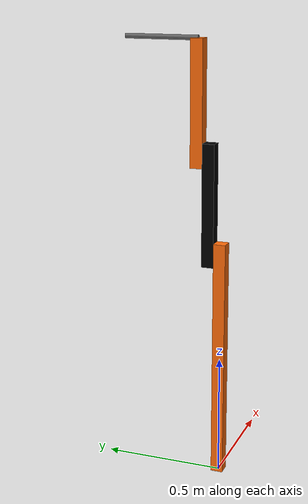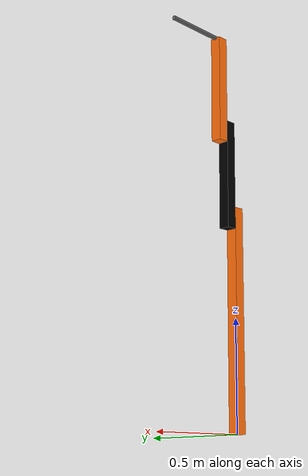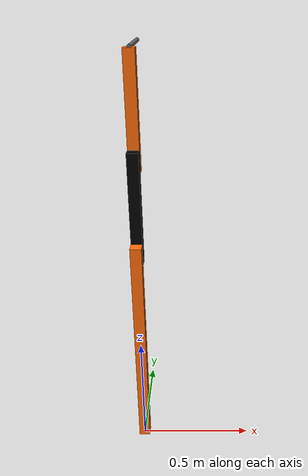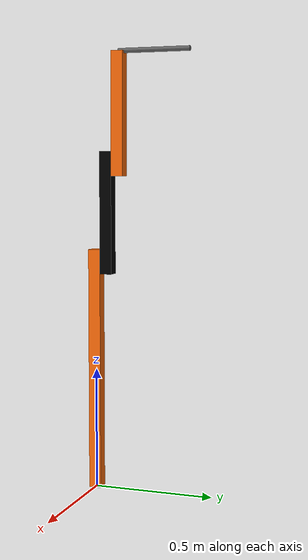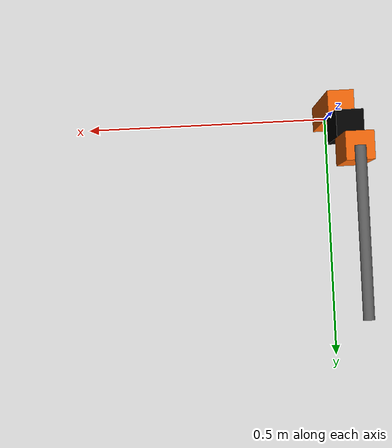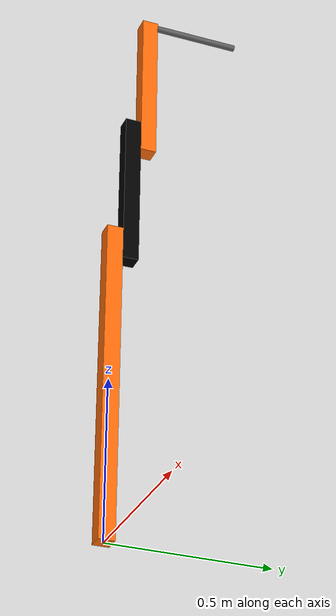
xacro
<?xml version="1.0"?>
<!-- Revolute-Revolute Manipulator -->
<robot name="needle_bot" xmlns:xacro="http://www.ros.org/wiki/xacro">
  <xacro:include filename="$(find needle_simulation)/urdf/common_properties.xacro"/>

  <!-- Constants for robot dimensions -->
  <xacro:property name="PI" value="3.1415926535897931"/>
  <xacro:property name="joint_range" value="2.35619"/>
  <xacro:property name="mass" value="0.25" /> <!-- arbitrary value for mass -->
  <xacro:property name="width" value="0.05" /> <!-- Square dimensions (widthxwidth) of beams -->
  <xacro:property name="height1" value="1" /> <!-- Link 1 -->
  <xacro:property name="height2" value="0.5" /> <!-- Link 2 -->
  <xacro:property name="height3" value="0.5" /> <!-- Link 3 -->
  <xacro:property name="needle_radius" value="0.01" /> <!-- Link 3 -->
  <xacro:property name="needle_length" value="0.3" /> <!-- Link 3 -->
  <xacro:property name="needle_mass" value="0.001" /> <!-- Link 3 -->
  <xacro:property name="axel_offset" value="0.05" /> <!-- Space btw top of beam and the each joint -->

  <!-- ros_control plugin -->
  <gazebo>
    <plugin name="gazebo_ros_control" filename="libgazebo_ros_control.so">
      <robotNamespace>/needle_bot</robotNamespace>
      <robotSimType>gazebo_ros_control/DefaultRobotHWSim</robotSimType>
    </plugin>
  </gazebo>

  <!-- Used for fixing robot to Gazebo 'base_link' -->
  <link name="base_link">
  </link>

  <joint name="base_joint" type="fixed">
    <parent link="base_link"/>
    <child link="link1"/>
    <origin xyz="0.0 0.0 0.0" rpy="0 0 0"/>
  </joint>

  <!-- Base Link -->
  <link name="link1">
    <collision>
      <origin xyz="0 0 ${height1/2}" rpy="0 0 0"/>
      <geometry>
	      <box size="${width} ${width} ${height1}"/>
      </geometry>
    </collision>

    <visual>
      <origin xyz="0 0 ${height1/2}" rpy="0 0 0"/>
      <geometry>
	      <box size="${width} ${width} ${height1}"/>
      </geometry>
      <material name="orange"/>
    </visual>

    <inertial>
      <origin xyz="0 0 ${height1/2}" rpy="0 0 0"/>
      <mass value="${mass*1000}"/>
      <inertia
	    ixx="${mass*1000 / 12.0 * (width*width + height1*height1)}" ixy="0.0" ixz="0.0"
	    iyy="${mass*1000 / 12.0 * (height1*height1 + width*width)}" iyz="0.0"
	    izz="${mass*1000 / 12.0 * (width*width + width*width)}"/>
      </inertial>
  </link>

  <joint name="joint1" type="revolute">
    <parent link="link1"/>
    <child link="link2"/>
    <limit effort="30" velocity="1.57079633" lower="-${joint_range}" upper="${joint_range}" />
    <origin xyz="0 ${width} ${height1 - axel_offset}" rpy="0 0 0"/>
    <axis xyz="0 1 0"/>
    <dynamics damping="0.7"/>
  </joint>

  <!-- Middle Link -->
  <link name="link2">
    <collision>
      <origin xyz="0 0 ${height2/2 - axel_offset}" rpy="0 0 0"/>
      <geometry>
      	<box size="${width} ${width} ${height2}"/>
      </geometry>
    </collision>

    <visual>
      <origin xyz="0 0 ${height2/2 - axel_offset}" rpy="0 0 0"/>
      <geometry>
    	<box size="${width} ${width} ${height2}"/>
      </geometry>
      <material name="black"/>
    </visual>

    <inertial>
      <origin xyz="0 0 ${height2/2 - axel_offset}" rpy="0 0 0"/>
      <mass value="${mass}"/>
      <inertia
	    ixx="${mass / 12.0 * (width*width + height2*height2)}" ixy="0.0" ixz="0.0"
	    iyy="${mass / 12.0 * (height2*height2 + width*width)}" iyz="0.0"
	    izz="${mass / 12.0 * (width*width + width*width)}"/>
      </inertial>
  </link>

  <joint name="joint2" type="revolute">
    <parent link="link2"/>
    <child link="link3"/>
    <limit effort="30" velocity="1.57079633" lower="-${joint_range}" upper="${joint_range}" />
    <origin xyz="0 ${width} ${height2 - axel_offset*2}" rpy="0 0 0"/>
    <axis xyz="0 1 0"/>
    <dynamics damping="0.7"/>
  </joint>

  <!-- Top Link -->
  <link name="link3">
    <collision>
      <origin xyz="0 0 ${height3/2 - axel_offset}" rpy="0 0 0"/>
      <geometry>
	      <box size="${width} ${width} ${height3}"/>
      </geometry>
    </collision>

    <visual>
      <origin xyz="0 0 ${height3/2 - axel_offset}" rpy="0 0 0"/>
      <geometry>
      	<box size="${width} ${width} ${height3}"/>
      </geometry>
      <material name="orange"/>
    </visual>

    <inertial>
      <origin xyz="0 0 ${height3/2 - axel_offset}" rpy="0 0 0"/>
      <mass value="${mass/2}"/>
      <inertia
	      ixx="${mass/2 / 12.0 * (width*width + height3*height3)}" ixy="0.0" ixz="0.0"
	      iyy="${mass/2 / 12.0 * (height3*height3 + width*width)}" iyz="0.0"
	      izz="${mass/2 / 12.0 * (width*width + width*width)}"/>
      </inertial>
  </link>

  <!-- Needle Link -->
  <link name="needle_link">
    <collision>
      <origin xyz="0 ${needle_length/2} ${height3 - axel_offset}" rpy="1.57 0 0"/>
      <geometry>
        <cylinder length="${needle_length}" radius="${needle_radius}"/>
      </geometry>
    </collision>

    <visual>
      <origin xyz="0 ${needle_length/2} ${height3 - axel_offset}" rpy="1.57 0 0"/>
      <geometry>
        <cylinder length="${needle_length}" radius="${needle_radius}"/>
      </geometry>
      <material name="light_black"/>
    </visual>

    <inertial>
      <origin xyz="0 ${needle_length/2} 0" rpy="0 0 0"/>
      <mass value="${needle_mass}"/>
      <inertia
	      ixx="${needle_mass / 12.0 * ((2*needle_radius)*(2*needle_radius) + needle_length*needle_length)}" ixy="0.0" ixz="0.0"
	      iyy="${needle_mass / 12.0 * ((2*needle_radius)*(2*needle_radius) + needle_length*needle_length)}" iyz="0.0"
	      izz="${needle_mass / 12.0 * ((2*needle_radius)*(2*needle_radius) + needle_length*needle_length)}"/>
      </inertial>
  </link>

  <joint name="needle_joint" type="fixed">
    <parent link="link3"/>
    <child link="needle_link"/>
    <origin xyz="0.0 0.0 0.0" rpy="0 0 0"/>
  </joint>

  <transmission name="tran1">
    <type>transmission_interface/SimpleTransmission</type>
    <joint name="joint1">
      <hardwareInterface>hardware_interface/EffortJointInterface</hardwareInterface>
    </joint>
    <actuator name="motor1">
      <hardwareInterface>hardware_interface/EffortJointInterface</hardwareInterface>
      <mechanicalReduction>1</mechanicalReduction>
    </actuator>
  </transmission>

  <transmission name="tran2">
    <type>transmission_interface/SimpleTransmission</type>
    <joint name="joint2">
      <hardwareInterface>hardware_interface/EffortJointInterface</hardwareInterface>
    </joint>
    <actuator name="motor2">
      <hardwareInterface>hardware_interface/EffortJointInterface</hardwareInterface>
      <mechanicalReduction>1</mechanicalReduction>
    </actuator>
  </transmission>

</robot>

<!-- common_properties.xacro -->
<robot name="xacro_properties" xmlns:xacro="http://ros.org/wiki/xacro">

  <!-- Init colour -->
  <material name="black">
      <color rgba="0.0 0.0 0.0 1.0"/>
  </material>

  <material name="dark">
    <color rgba="0.3 0.3 0.3 1.0"/>
  </material>
  <material name="light_black">
    <color rgba="0.4 0.4 0.4 1.0"/>
  </material>

  <material name="blue">
    <color rgba="0.0 0.0 0.8 1.0"/>
  </material>

  <material name="green">
    <color rgba="0.0 0.8 0.0 1.0"/>
  </material>

  <material name="grey">
    <color rgba="0.5 0.5 0.5 1.0"/>
  </material>

  <material name="yellow">
    <color rgba="1.0 1.0 0.0 1.0"/>
  </material>

  <material name="orange">
    <color rgba="${255/255} ${108/255} ${10/255} 1.0"/>
  </material>

  <material name="brown">
    <color rgba="${222/255} ${207/255} ${195/255} 1.0"/>
  </material>

  <material name="red">
    <color rgba="0.8 0.0 0.0 1.0"/>
  </material>

  <material name="white">
    <color rgba="1.0 1.0 1.0 1.0"/>
  </material>
</robot>
